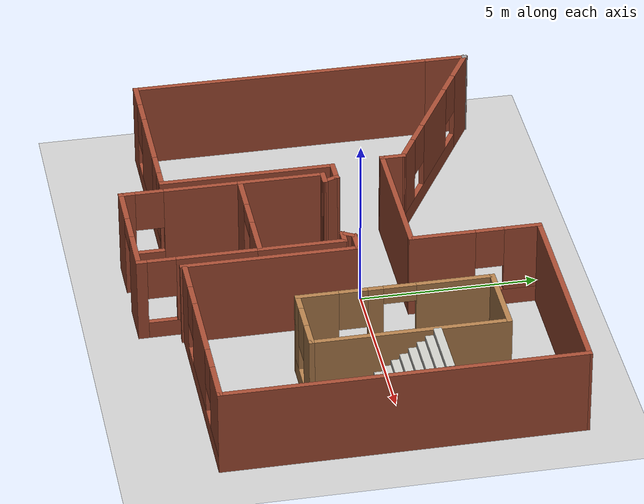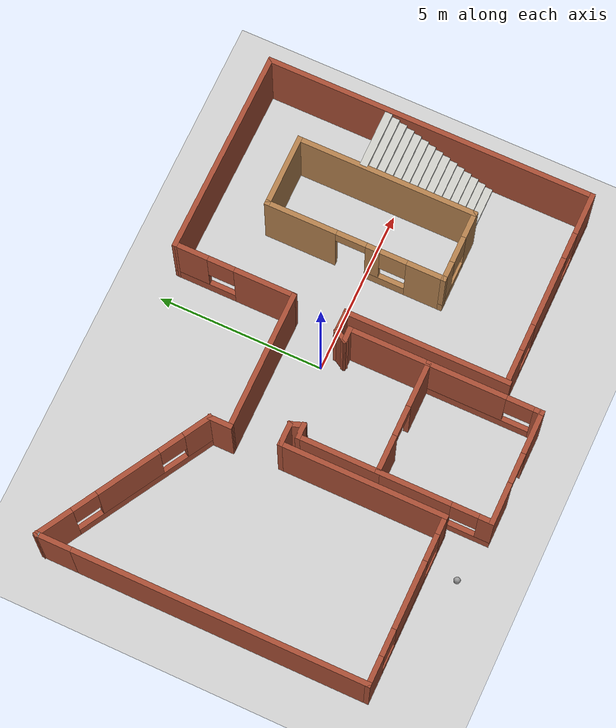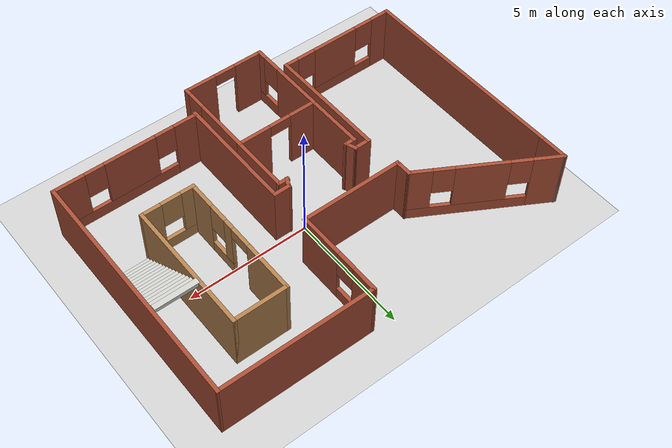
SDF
<sdf version="1.6">
 <world name="default">
  <model name="ground_plane">
   <static>1</static>
   <link name="link">
    <collision name="collision">
     <geometry><plane><normal>0 0 1</normal><size>100 100</size></plane></geometry>
     <surface><friction><ode><mu>100</mu><mu2>50</mu2></ode></friction></surface>
    </collision>
    <visual name="visual">
     <cast_shadows>0</cast_shadows>
     <geometry><plane><normal>0 0 1</normal><size>100 100</size></plane></geometry>
     <material>
      <script><uri>file://media/materials/scripts/gazebo.material</uri><name>Gazebo/Grey</name></script>
     </material>
    </visual>
   </link>
  </model>
  <model name="Bad_Design">
   <pose>-0.532956 -0.718389 0 0 -0 0</pose>
   <link name="Stairs_1">
    <visual name="Stairs_1_Visual_0">
     <pose>6.58288 -1.42378 0.083333 0 -0 -3.14159</pose>
     <geometry><box><size>1.74481 0.229787 0.166667</size></box></geometry>
     <material>
      <script><uri>file://media/materials/scripts/gazebo.material</uri><name>Gazebo/CeilingTiled</name></script>
      <ambient>1 1 1 1</ambient>
     </material>
     <meta><layer>0</layer></meta>
    </visual>
    <collision name="Stairs_1_Collision_0">
     <geometry><box><size>1.74481 0.229787 0.166667</size></box></geometry>
     <pose>6.58288 -1.42378 0.083333 0 -0 -3.14159</pose>
    </collision>
    <visual name="Stairs_1_Visual_1">
     <pose>6.58288 -1.194 0.25 0 -0 -3.14159</pose>
     <geometry><box><size>1.74481 0.229787 0.166667</size></box></geometry>
     <material>
      <script><uri>file://media/materials/scripts/gazebo.material</uri><name>Gazebo/CeilingTiled</name></script>
      <ambient>1 1 1 1</ambient>
     </material>
     <meta><layer>0</layer></meta>
    </visual>
    <collision name="Stairs_1_Collision_1">
     <geometry><box><size>1.74481 0.229787 0.166667</size></box></geometry>
     <pose>6.58288 -1.194 0.25 0 -0 -3.14159</pose>
    </collision>
    <visual name="Stairs_1_Visual_2">
     <pose>6.58288 -0.964209 0.416667 0 -0 -3.14159</pose>
     <geometry><box><size>1.74481 0.229787 0.166667</size></box></geometry>
     <material>
      <script><uri>file://media/materials/scripts/gazebo.material</uri><name>Gazebo/CeilingTiled</name></script>
      <ambient>1 1 1 1</ambient>
     </material>
     <meta><layer>0</layer></meta>
    </visual>
    <collision name="Stairs_1_Collision_2">
     <geometry><box><size>1.74481 0.229787 0.166667</size></box></geometry>
     <pose>6.58288 -0.964209 0.416667 0 -0 -3.14159</pose>
    </collision>
    <visual name="Stairs_1_Visual_3">
     <pose>6.58288 -0.734423 0.583333 0 -0 -3.14159</pose>
     <geometry><box><size>1.74481 0.229787 0.166667</size></box></geometry>
     <material>
      <script><uri>file://media/materials/scripts/gazebo.material</uri><name>Gazebo/CeilingTiled</name></script>
      <ambient>1 1 1 1</ambient>
     </material>
     <meta><layer>0</layer></meta>
    </visual>
    <collision name="Stairs_1_Collision_3">
     <geometry><box><size>1.74481 0.229787 0.166667</size></box></geometry>
     <pose>6.58288 -0.734423 0.583333 0 -0 -3.14159</pose>
    </collision>
    <visual name="Stairs_1_Visual_4">
     <pose>6.58288 -0.504636 0.75 0 -0 -3.14159</pose>
     <geometry><box><size>1.74481 0.229787 0.166667</size></box></geometry>
     <material>
      <script><uri>file://media/materials/scripts/gazebo.material</uri><name>Gazebo/CeilingTiled</name></script>
      <ambient>1 1 1 1</ambient>
     </material>
     <meta><layer>0</layer></meta>
    </visual>
    <collision name="Stairs_1_Collision_4">
     <geometry><box><size>1.74481 0.229787 0.166667</size></box></geometry>
     <pose>6.58288 -0.504636 0.75 0 -0 -3.14159</pose>
    </collision>
    <visual name="Stairs_1_Visual_5">
     <pose>6.58288 -0.274849 0.916667 0 -0 -3.14159</pose>
     <geometry><box><size>1.74481 0.229787 0.166667</size></box></geometry>
     <material>
      <script><uri>file://media/materials/scripts/gazebo.material</uri><name>Gazebo/CeilingTiled</name></script>
      <ambient>1 1 1 1</ambient>
     </material>
     <meta><layer>0</layer></meta>
    </visual>
    <collision name="Stairs_1_Collision_5">
     <geometry><box><size>1.74481 0.229787 0.166667</size></box></geometry>
     <pose>6.58288 -0.274849 0.916667 0 -0 -3.14159</pose>
    </collision>
    <visual name="Stairs_1_Visual_6">
     <pose>6.58288 -0.045063 1.08333 0 -0 -3.14159</pose>
     <geometry><box><size>1.74481 0.229787 0.166667</size></box></geometry>
     <material>
      <script><uri>file://media/materials/scripts/gazebo.material</uri><name>Gazebo/CeilingTiled</name></script>
      <ambient>1 1 1 1</ambient>
     </material>
     <meta><layer>0</layer></meta>
    </visual>
    <collision name="Stairs_1_Collision_6">
     <geometry><box><size>1.74481 0.229787 0.166667</size></box></geometry>
     <pose>6.58288 -0.045063 1.08333 0 -0 -3.14159</pose>
    </collision>
    <visual name="Stairs_1_Visual_7">
     <pose>6.58288 0.184724 1.25 0 -0 -3.14159</pose>
     <geometry><box><size>1.74481 0.229787 0.166667</size></box></geometry>
     <material>
      <script><uri>file://media/materials/scripts/gazebo.material</uri><name>Gazebo/CeilingTiled</name></script>
      <ambient>1 1 1 1</ambient>
     </material>
     <meta><layer>0</layer></meta>
    </visual>
    <collision name="Stairs_1_Collision_7">
     <geometry><box><size>1.74481 0.229787 0.166667</size></box></geometry>
     <pose>6.58288 0.184724 1.25 0 -0 -3.14159</pose>
    </collision>
    <visual name="Stairs_1_Visual_8">
     <pose>6.58288 0.414511 1.41667 0 -0 -3.14159</pose>
     <geometry><box><size>1.74481 0.229787 0.166667</size></box></geometry>
     <material>
      <script><uri>file://media/materials/scripts/gazebo.material</uri><name>Gazebo/CeilingTiled</name></script>
      <ambient>1 1 1 1</ambient>
     </material>
     <meta><layer>0</layer></meta>
    </visual>
    <collision name="Stairs_1_Collision_8">
     <geometry><box><size>1.74481 0.229787 0.166667</size></box></geometry>
     <pose>6.58288 0.414511 1.41667 0 -0 -3.14159</pose>
    </collision>
    <visual name="Stairs_1_Visual_9">
     <pose>6.58288 0.644297 1.58333 0 -0 -3.14159</pose>
     <geometry><box><size>1.74481 0.229787 0.166667</size></box></geometry>
     <material>
      <script><uri>file://media/materials/scripts/gazebo.material</uri><name>Gazebo/CeilingTiled</name></script>
      <ambient>1 1 1 1</ambient>
     </material>
     <meta><layer>0</layer></meta>
    </visual>
    <collision name="Stairs_1_Collision_9">
     <geometry><box><size>1.74481 0.229787 0.166667</size></box></geometry>
     <pose>6.58288 0.644297 1.58333 0 -0 -3.14159</pose>
    </collision>
    <visual name="Stairs_1_Visual_10">
     <pose>6.58288 0.874084 1.75 0 -0 -3.14159</pose>
     <geometry><box><size>1.74481 0.229787 0.166667</size></box></geometry>
     <material>
      <script><uri>file://media/materials/scripts/gazebo.material</uri><name>Gazebo/CeilingTiled</name></script>
      <ambient>1 1 1 1</ambient>
     </material>
     <meta><layer>0</layer></meta>
    </visual>
    <collision name="Stairs_1_Collision_10">
     <geometry><box><size>1.74481 0.229787 0.166667</size></box></geometry>
     <pose>6.58288 0.874084 1.75 0 -0 -3.14159</pose>
    </collision>
    <visual name="Stairs_1_Visual_11">
     <pose>6.58288 1.10387 1.91667 0 -0 -3.14159</pose>
     <geometry><box><size>1.74481 0.229787 0.166667</size></box></geometry>
     <material>
      <script><uri>file://media/materials/scripts/gazebo.material</uri><name>Gazebo/CeilingTiled</name></script>
      <ambient>1 1 1 1</ambient>
     </material>
     <meta><layer>0</layer></meta>
    </visual>
    <collision name="Stairs_1_Collision_11">
     <geometry><box><size>1.74481 0.229787 0.166667</size></box></geometry>
     <pose>6.58288 1.10387 1.91667 0 -0 -3.14159</pose>
    </collision>
    <visual name="Stairs_1_Visual_12">
     <pose>6.58288 1.33366 2.08333 0 -0 -3.14159</pose>
     <geometry><box><size>1.74481 0.229787 0.166667</size></box></geometry>
     <material>
      <script><uri>file://media/materials/scripts/gazebo.material</uri><name>Gazebo/CeilingTiled</name></script>
      <ambient>1 1 1 1</ambient>
     </material>
     <meta><layer>0</layer></meta>
    </visual>
    <collision name="Stairs_1_Collision_12">
     <geometry><box><size>1.74481 0.229787 0.166667</size></box></geometry>
     <pose>6.58288 1.33366 2.08333 0 -0 -3.14159</pose>
    </collision>
    <visual name="Stairs_1_Visual_13">
     <pose>6.58288 1.56344 2.25 0 -0 -3.14159</pose>
     <geometry><box><size>1.74481 0.229787 0.166667</size></box></geometry>
     <material>
      <script><uri>file://media/materials/scripts/gazebo.material</uri><name>Gazebo/CeilingTiled</name></script>
      <ambient>1 1 1 1</ambient>
     </material>
     <meta><layer>0</layer></meta>
    </visual>
    <collision name="Stairs_1_Collision_13">
     <geometry><box><size>1.74481 0.229787 0.166667</size></box></geometry>
     <pose>6.58288 1.56344 2.25 0 -0 -3.14159</pose>
    </collision>
    <visual name="Stairs_1_Visual_14">
     <pose>6.58288 1.79323 2.41667 0 -0 -3.14159</pose>
     <geometry><box><size>1.74481 0.229787 0.166667</size></box></geometry>
     <material>
      <script><uri>file://media/materials/scripts/gazebo.material</uri><name>Gazebo/CeilingTiled</name></script>
      <ambient>1 1 1 1</ambient>
     </material>
     <meta><layer>0</layer></meta>
    </visual>
    <collision name="Stairs_1_Collision_14">
     <geometry><box><size>1.74481 0.229787 0.166667</size></box></geometry>
     <pose>6.58288 1.79323 2.41667 0 -0 -3.14159</pose>
    </collision>
   </link>
   <link name="Wall_10">
    <collision name="Wall_10_Collision">
     <geometry><box><size>2.5 0.15 2.5</size></box></geometry>
     <pose>0 0 1.25 0 -0 0</pose>
    </collision>
    <visual name="Wall_10_Visual">
     <pose>0 0 1.25 0 -0 0</pose>
     <geometry><box><size>2.5 0.15 2.5</size></box></geometry>
     <material>
      <script><uri>file://media/materials/scripts/gazebo.material</uri><name>Gazebo/Bricks</name></script>
      <ambient>1 1 1 1</ambient>
     </material>
     <meta><layer>0</layer></meta>
    </visual>
    <pose>-2.15842 -1.02464 0 0 0 -1.5708</pose>
   </link>
   <link name="Wall_11">
    <pose>-0.483422 -2.19964 0 0 -0 0</pose>
    <visual name="Wall_11_Visual_0">
     <pose>-1.15657 0 1.25 0 -0 0</pose>
     <geometry><box><size>1.18686 0.15 2.5</size></box></geometry>
     <material>
      <script><uri>file://media/materials/scripts/gazebo.material</uri><name>Gazebo/Bricks</name></script>
      <ambient>1 1 1 1</ambient>
     </material>
     <meta><layer>0</layer></meta>
    </visual>
    <collision name="Wall_11_Collision_0">
     <geometry><box><size>1.18686 0.15 2.5</size></box></geometry>
     <pose>-1.15657 0 1.25 0 -0 0</pose>
    </collision>
    <visual name="Wall_11_Visual_1">
     <pose>1.04343 0 1.25 0 -0 0</pose>
     <geometry><box><size>1.41314 0.15 2.5</size></box></geometry>
     <material>
      <script><uri>file://media/materials/scripts/gazebo.material</uri><name>Gazebo/Bricks</name></script>
      <ambient>1 1 1 1</ambient>
     </material>
     <meta><layer>0</layer></meta>
    </visual>
    <collision name="Wall_11_Collision_1">
     <geometry><box><size>1.41314 0.15 2.5</size></box></geometry>
     <pose>1.04343 0 1.25 0 -0 0</pose>
    </collision>
    <visual name="Wall_11_Visual_2">
     <pose>-0.113144 0 2.25 0 -0 0</pose>
     <geometry><box><size>0.9 0.15 0.5</size></box></geometry>
     <material>
      <script><uri>file://media/materials/scripts/gazebo.material</uri><name>Gazebo/Bricks</name></script>
      <ambient>1 1 1 1</ambient>
     </material>
     <meta><layer>0</layer></meta>
    </visual>
    <collision name="Wall_11_Collision_2">
     <geometry><box><size>0.9 0.15 0.5</size></box></geometry>
     <pose>-0.113144 0 2.25 0 -0 0</pose>
    </collision>
   </link>
   <link name="Wall_12">
    <collision name="Wall_12_Collision">
     <geometry><box><size>2.5 0.15 2.5</size></box></geometry>
     <pose>0 0 1.25 0 -0 0</pose>
    </collision>
    <visual name="Wall_12_Visual">
     <pose>0 0 1.25 0 -0 0</pose>
     <geometry><box><size>2.5 0.15 2.5</size></box></geometry>
     <material>
      <script><uri>file://media/materials/scripts/gazebo.material</uri><name>Gazebo/Bricks</name></script>
      <ambient>1 1 1 1</ambient>
     </material>
     <meta><layer>0</layer></meta>
    </visual>
    <pose>1.19158 -1.02464 0 0 -0 1.5708</pose>
   </link>
   <link name="Wall_13">
    <collision name="Wall_13_Collision">
     <geometry><box><size>0.5 0.15 2.5</size></box></geometry>
     <pose>0 0 1.25 0 -0 0</pose>
    </collision>
    <visual name="Wall_13_Visual">
     <pose>0 0 1.25 0 -0 0</pose>
     <geometry><box><size>0.5 0.15 2.5</size></box></geometry>
     <material>
      <script><uri>file://media/materials/scripts/gazebo.material</uri><name>Gazebo/Bricks</name></script>
      <ambient>1 1 1 1</ambient>
     </material>
     <meta><layer>0</layer></meta>
    </visual>
    <pose>1.01658 0.150362 0 0 -0 3.14159</pose>
   </link>
   <link name="Wall_16">
    <collision name="Wall_16_Collision">
     <geometry><box><size>0.492606 0.15 2.5</size></box></geometry>
     <pose>0 0 1.25 0 -0 0</pose>
    </collision>
    <visual name="Wall_16_Visual">
     <pose>0 0 1.25 0 -0 0</pose>
     <geometry><box><size>0.492606 0.15 2.5</size></box></geometry>
     <material>
      <script><uri>file://media/materials/scripts/gazebo.material</uri><name>Gazebo/Bricks</name></script>
      <ambient>1 1 1 1</ambient>
     </material>
     <meta><layer>0</layer></meta>
    </visual>
    <pose>0.927449 0.298587 0 0 -0 1.04572</pose>
   </link>
   <link name="Wall_17">
    <collision name="Wall_17_Collision">
     <geometry><box><size>0.75 0.15 2.5</size></box></geometry>
     <pose>0 0 1.25 0 -0 0</pose>
    </collision>
    <visual name="Wall_17_Visual">
     <pose>0 0 1.25 0 -0 0</pose>
     <geometry><box><size>0.75 0.15 2.5</size></box></geometry>
     <material>
      <script><uri>file://media/materials/scripts/gazebo.material</uri><name>Gazebo/Bricks</name></script>
      <ambient>1 1 1 1</ambient>
     </material>
     <meta><layer>0</layer></meta>
    </visual>
    <pose>1.29811 0.446813 0 0 -0 0</pose>
   </link>
   <link name="Wall_19">
    <pose>4.61658 -4.34964 0 0 -0 0</pose>
    <visual name="Wall_19_Visual_0">
     <pose>-2.51106 0 1.25 0 -0 0</pose>
     <geometry><box><size>0.977883 0.15 2.5</size></box></geometry>
     <material>
      <script><uri>file://media/materials/scripts/gazebo.material</uri><name>Gazebo/Bricks</name></script>
      <ambient>1 1 1 1</ambient>
     </material>
     <meta><layer>0</layer></meta>
    </visual>
    <collision name="Wall_19_Collision_0">
     <geometry><box><size>0.977883 0.15 2.5</size></box></geometry>
     <pose>-2.51106 0 1.25 0 -0 0</pose>
    </collision>
    <visual name="Wall_19_Visual_1">
     <pose>0.488942 0 0.25 0 -0 0</pose>
     <geometry><box><size>5.02212 0.15 0.5</size></box></geometry>
     <material>
      <script><uri>file://media/materials/scripts/gazebo.material</uri><name>Gazebo/Bricks</name></script>
      <ambient>1 1 1 1</ambient>
     </material>
     <meta><layer>0</layer></meta>
    </visual>
    <collision name="Wall_19_Collision_1">
     <geometry><box><size>5.02212 0.15 0.5</size></box></geometry>
     <pose>0.488942 0 0.25 0 -0 0</pose>
    </collision>
    <visual name="Wall_19_Visual_2">
     <pose>-0.159106 0 1.5 0 -0 0</pose>
     <geometry><box><size>2.12602 0.15 2</size></box></geometry>
     <material>
      <script><uri>file://media/materials/scripts/gazebo.material</uri><name>Gazebo/Bricks</name></script>
      <ambient>1 1 1 1</ambient>
     </material>
     <meta><layer>0</layer></meta>
    </visual>
    <collision name="Wall_19_Collision_2">
     <geometry><box><size>2.12602 0.15 2</size></box></geometry>
     <pose>-0.159106 0 1.5 0 -0 0</pose>
    </collision>
    <visual name="Wall_19_Visual_3">
     <pose>2.35195 0 1.5 0 -0 0</pose>
     <geometry><box><size>1.29609 0.15 2</size></box></geometry>
     <material>
      <script><uri>file://media/materials/scripts/gazebo.material</uri><name>Gazebo/Bricks</name></script>
      <ambient>1 1 1 1</ambient>
     </material>
     <meta><layer>0</layer></meta>
    </visual>
    <collision name="Wall_19_Collision_3">
     <geometry><box><size>1.29609 0.15 2</size></box></geometry>
     <pose>2.35195 0 1.5 0 -0 0</pose>
    </collision>
    <visual name="Wall_19_Visual_4">
     <pose>-1.62212 0 1.9 0 -0 0</pose>
     <geometry><box><size>0.8 0.15 1.2</size></box></geometry>
     <material>
      <script><uri>file://media/materials/scripts/gazebo.material</uri><name>Gazebo/Bricks</name></script>
      <ambient>1 1 1 1</ambient>
     </material>
     <meta><layer>0</layer></meta>
    </visual>
    <collision name="Wall_19_Collision_4">
     <geometry><box><size>0.8 0.15 1.2</size></box></geometry>
     <pose>-1.62212 0 1.9 0 -0 0</pose>
    </collision>
    <visual name="Wall_19_Visual_5">
     <pose>1.30391 0 1.9 0 -0 0</pose>
     <geometry><box><size>0.8 0.15 1.2</size></box></geometry>
     <material>
      <script><uri>file://media/materials/scripts/gazebo.material</uri><name>Gazebo/Bricks</name></script>
      <ambient>1 1 1 1</ambient>
     </material>
     <meta><layer>0</layer></meta>
    </visual>
    <collision name="Wall_19_Collision_5">
     <geometry><box><size>0.8 0.15 1.2</size></box></geometry>
     <pose>1.30391 0 1.9 0 -0 0</pose>
    </collision>
   </link>
   <link name="Wall_20">
    <collision name="Wall_20_Collision">
     <geometry><box><size>10 0.15 2.5</size></box></geometry>
     <pose>0 0 1.25 0 -0 0</pose>
    </collision>
    <visual name="Wall_20_Visual">
     <pose>0 0 1.25 0 -0 0</pose>
     <geometry><box><size>10 0.15 2.5</size></box></geometry>
     <material>
      <script><uri>file://media/materials/scripts/gazebo.material</uri><name>Gazebo/Bricks</name></script>
      <ambient>1 1 1 1</ambient>
     </material>
     <meta><layer>0</layer></meta>
    </visual>
    <pose>7.54158 0.575362 0 0 -0 1.5708</pose>
   </link>
   <link name="Wall_27">
    <collision name="Wall_27_Collision">
     <geometry><box><size>0.522524 0.15 2.5</size></box></geometry>
     <pose>0 0 1.25 0 -0 0</pose>
    </collision>
    <visual name="Wall_27_Visual">
     <pose>0 0 1.25 0 -0 0</pose>
     <geometry><box><size>0.522524 0.15 2.5</size></box></geometry>
     <material>
      <script><uri>file://media/materials/scripts/gazebo.material</uri><name>Gazebo/Bricks</name></script>
      <ambient>1 1 1 1</ambient>
     </material>
     <meta><layer>0</layer></meta>
    </visual>
    <pose>-1.87221 0.325362 0 0 0 -1.22128</pose>
   </link>
   <link name="Wall_30">
    <collision name="Wall_30_Collision">
     <geometry><box><size>5 0.15 2.5</size></box></geometry>
     <pose>0 0 1.25 0 -0 0</pose>
    </collision>
    <visual name="Wall_30_Visual">
     <pose>0 0 1.25 0 -0 0</pose>
     <geometry><box><size>5 0.15 2.5</size></box></geometry>
     <material>
      <script><uri>file://media/materials/scripts/gazebo.material</uri><name>Gazebo/Bricks</name></script>
      <ambient>1 1 1 1</ambient>
     </material>
     <meta><layer>0</layer></meta>
    </visual>
    <pose>-2.53599 -1.92464 0 0 0 -1.5708</pose>
   </link>
   <link name="Wall_35">
    <collision name="Wall_35_Collision">
     <geometry><box><size>5 0.15 2.5</size></box></geometry>
     <pose>0 0 1.25 0 -0 0</pose>
    </collision>
    <visual name="Wall_35_Visual">
     <pose>0 0 1.25 0 -0 0</pose>
     <geometry><box><size>5 0.15 2.5</size></box></geometry>
     <material>
      <script><uri>file://media/materials/scripts/gazebo.material</uri><name>Gazebo/Bricks</name></script>
      <ambient>1 1 1 1</ambient>
     </material>
     <meta><layer>0</layer></meta>
    </visual>
    <pose>1.59811 -1.97819 0 0 0 -1.5708</pose>
   </link>
   <link name="Wall_37">
    <collision name="Wall_37_Collision">
     <geometry><box><size>8.75 0.15 2.5</size></box></geometry>
     <pose>0 0 1.25 0 -0 0</pose>
    </collision>
    <visual name="Wall_37_Visual">
     <pose>0 0 1.25 0 -0 0</pose>
     <geometry><box><size>8.75 0.15 2.5</size></box></geometry>
     <material>
      <script><uri>file://media/materials/scripts/gazebo.material</uri><name>Gazebo/Bricks</name></script>
      <ambient>1 1 1 1</ambient>
     </material>
     <meta><layer>0</layer></meta>
    </visual>
    <pose>-7.51472 -0.050957 0 0 -0 1.5708</pose>
   </link>
   <link name="Wall_40">
    <collision name="Wall_40_Collision">
     <geometry><box><size>0.15 0.15 2.5</size></box></geometry>
     <pose>0 0 1.25 0 -0 0</pose>
    </collision>
    <visual name="Wall_40_Visual">
     <pose>0 0 1.25 0 -0 0</pose>
     <geometry><box><size>0.15 0.15 2.5</size></box></geometry>
     <material>
      <script><uri>file://media/materials/scripts/gazebo.material</uri><name>Gazebo/Grey</name></script>
      <ambient>1 1 1 1</ambient>
     </material>
     <meta><layer>0</layer></meta>
    </visual>
    <pose>-7.51472 5.34904 0 0 -0 0</pose>
   </link>
   <link name="Wall_44">
    <collision name="Wall_44_Collision">
     <geometry><box><size>1.25 0.15 2.5</size></box></geometry>
     <pose>0 0 1.25 0 -0 0</pose>
    </collision>
    <visual name="Wall_44_Visual">
     <pose>0 0 1.25 0 -0 0</pose>
     <geometry><box><size>1.25 0.15 2.5</size></box></geometry>
     <material>
      <script><uri>file://media/materials/scripts/gazebo.material</uri><name>Gazebo/Bricks</name></script>
      <ambient>1 1 1 1</ambient>
     </material>
     <meta><layer>0</layer></meta>
    </visual>
    <pose>-7.51472 4.79904 0 0 -0 1.5708</pose>
   </link>
   <link name="Wall_45">
    <pose>-5.08985 3.94904 0 0 0 -0.523599</pose>
    <visual name="Wall_45_Visual_0">
     <pose>-2.27507 0 1.25 0 -0 0</pose>
     <geometry><box><size>1.19987 0.15 2.5</size></box></geometry>
     <material>
      <script><uri>file://media/materials/scripts/gazebo.material</uri><name>Gazebo/Bricks</name></script>
      <ambient>1 1 1 1</ambient>
     </material>
     <meta><layer>0</layer></meta>
    </visual>
    <collision name="Wall_45_Collision_0">
     <geometry><box><size>1.19987 0.15 2.5</size></box></geometry>
     <pose>-2.27507 0 1.25 0 -0 0</pose>
    </collision>
    <visual name="Wall_45_Visual_1">
     <pose>0.599933 0 0.25 0 -0 0</pose>
     <geometry><box><size>4.55013 0.15 0.5</size></box></geometry>
     <material>
      <script><uri>file://media/materials/scripts/gazebo.material</uri><name>Gazebo/Bricks</name></script>
      <ambient>1 1 1 1</ambient>
     </material>
     <meta><layer>0</layer></meta>
    </visual>
    <collision name="Wall_45_Collision_1">
     <geometry><box><size>4.55013 0.15 0.5</size></box></geometry>
     <pose>0.599933 0 0.25 0 -0 0</pose>
    </collision>
    <visual name="Wall_45_Visual_2">
     <pose>0.130346 0 1.5 0 -0 0</pose>
     <geometry><box><size>2.01096 0.15 2</size></box></geometry>
     <material>
      <script><uri>file://media/materials/scripts/gazebo.material</uri><name>Gazebo/Bricks</name></script>
      <ambient>1 1 1 1</ambient>
     </material>
     <meta><layer>0</layer></meta>
    </visual>
    <collision name="Wall_45_Collision_2">
     <geometry><box><size>2.01096 0.15 2</size></box></geometry>
     <pose>0.130346 0 1.5 0 -0 0</pose>
    </collision>
    <visual name="Wall_45_Visual_3">
     <pose>2.40541 0 1.5 0 -0 0</pose>
     <geometry><box><size>0.939175 0.15 2</size></box></geometry>
     <material>
      <script><uri>file://media/materials/scripts/gazebo.material</uri><name>Gazebo/Bricks</name></script>
      <ambient>1 1 1 1</ambient>
     </material>
     <meta><layer>0</layer></meta>
    </visual>
    <collision name="Wall_45_Collision_3">
     <geometry><box><size>0.939175 0.15 2</size></box></geometry>
     <pose>2.40541 0 1.5 0 -0 0</pose>
    </collision>
    <visual name="Wall_45_Visual_4">
     <pose>-1.27513 0 1.9 0 -0 0</pose>
     <geometry><box><size>0.8 0.15 1.2</size></box></geometry>
     <material>
      <script><uri>file://media/materials/scripts/gazebo.material</uri><name>Gazebo/Bricks</name></script>
      <ambient>1 1 1 1</ambient>
     </material>
     <meta><layer>0</layer></meta>
    </visual>
    <collision name="Wall_45_Collision_4">
     <geometry><box><size>0.8 0.15 1.2</size></box></geometry>
     <pose>-1.27513 0 1.9 0 -0 0</pose>
    </collision>
    <visual name="Wall_45_Visual_5">
     <pose>1.53582 0 1.9 0 -0 0</pose>
     <geometry><box><size>0.8 0.15 1.2</size></box></geometry>
     <material>
      <script><uri>file://media/materials/scripts/gazebo.material</uri><name>Gazebo/Bricks</name></script>
      <ambient>1 1 1 1</ambient>
     </material>
     <meta><layer>0</layer></meta>
    </visual>
    <collision name="Wall_45_Collision_5">
     <geometry><box><size>0.8 0.15 1.2</size></box></geometry>
     <pose>1.53582 0 1.9 0 -0 0</pose>
    </collision>
   </link>
   <link name="Wall_46">
    <collision name="Wall_46_Collision">
     <geometry><box><size>0.75 0.15 2.5</size></box></geometry>
     <pose>0 0 1.25 0 -0 0</pose>
    </collision>
    <visual name="Wall_46_Visual">
     <pose>0 0 1.25 0 -0 0</pose>
     <geometry><box><size>0.75 0.15 2.5</size></box></geometry>
     <material>
      <script><uri>file://media/materials/scripts/gazebo.material</uri><name>Gazebo/Bricks</name></script>
      <ambient>1 1 1 1</ambient>
     </material>
     <meta><layer>0</layer></meta>
    </visual>
    <pose>-2.66498 2.24904 0 0 0 -1.5708</pose>
   </link>
   <link name="Wall_47">
    <collision name="Wall_47_Collision">
     <geometry><box><size>4.25 0.15 2.5</size></box></geometry>
     <pose>0 0 1.25 0 -0 0</pose>
    </collision>
    <visual name="Wall_47_Visual">
     <pose>0 0 1.25 0 -0 0</pose>
     <geometry><box><size>4.25 0.15 2.5</size></box></geometry>
     <material>
      <script><uri>file://media/materials/scripts/gazebo.material</uri><name>Gazebo/Bricks</name></script>
      <ambient>1 1 1 1</ambient>
     </material>
     <meta><layer>0</layer></meta>
    </visual>
    <pose>-0.61498 1.94904 0 0 -0 0</pose>
   </link>
   <link name="Wall_48">
    <pose>1.43502 3.74904 0 0 -0 1.5708</pose>
    <visual name="Wall_48_Visual_0">
     <pose>-0.937432 0 1.25 0 -0 0</pose>
     <geometry><box><size>1.87514 0.15 2.5</size></box></geometry>
     <material>
      <script><uri>file://media/materials/scripts/gazebo.material</uri><name>Gazebo/Bricks</name></script>
      <ambient>1 1 1 1</ambient>
     </material>
     <meta><layer>0</layer></meta>
    </visual>
    <collision name="Wall_48_Collision_0">
     <geometry><box><size>1.87514 0.15 2.5</size></box></geometry>
     <pose>-0.937432 0 1.25 0 -0 0</pose>
    </collision>
    <visual name="Wall_48_Visual_1">
     <pose>0.937568 0 0.25 0 -0 0</pose>
     <geometry><box><size>1.87486 0.15 0.5</size></box></geometry>
     <material>
      <script><uri>file://media/materials/scripts/gazebo.material</uri><name>Gazebo/Bricks</name></script>
      <ambient>1 1 1 1</ambient>
     </material>
     <meta><layer>0</layer></meta>
    </visual>
    <collision name="Wall_48_Collision_1">
     <geometry><box><size>1.87486 0.15 0.5</size></box></geometry>
     <pose>0.937568 0 0.25 0 -0 0</pose>
    </collision>
    <visual name="Wall_48_Visual_2">
     <pose>1.33757 0 1.5 0 -0 0</pose>
     <geometry><box><size>1.07486 0.15 2</size></box></geometry>
     <material>
      <script><uri>file://media/materials/scripts/gazebo.material</uri><name>Gazebo/Bricks</name></script>
      <ambient>1 1 1 1</ambient>
     </material>
     <meta><layer>0</layer></meta>
    </visual>
    <collision name="Wall_48_Collision_2">
     <geometry><box><size>1.07486 0.15 2</size></box></geometry>
     <pose>1.33757 0 1.5 0 -0 0</pose>
    </collision>
    <visual name="Wall_48_Visual_3">
     <pose>0.400137 0 1.9 0 -0 0</pose>
     <geometry><box><size>0.8 0.15 1.2</size></box></geometry>
     <material>
      <script><uri>file://media/materials/scripts/gazebo.material</uri><name>Gazebo/Bricks</name></script>
      <ambient>1 1 1 1</ambient>
     </material>
     <meta><layer>0</layer></meta>
    </visual>
    <collision name="Wall_48_Collision_3">
     <geometry><box><size>0.8 0.15 1.2</size></box></geometry>
     <pose>0.400137 0 1.9 0 -0 0</pose>
    </collision>
   </link>
   <link name="Wall_49">
    <collision name="Wall_49_Collision">
     <geometry><box><size>6.25675 0.15 2.5</size></box></geometry>
     <pose>0 0 1.25 0 -0 0</pose>
    </collision>
    <visual name="Wall_49_Visual">
     <pose>0 0 1.25 0 -0 0</pose>
     <geometry><box><size>6.25675 0.15 2.5</size></box></geometry>
     <material>
      <script><uri>file://media/materials/scripts/gazebo.material</uri><name>Gazebo/Bricks</name></script>
      <ambient>1 1 1 1</ambient>
     </material>
     <meta><layer>0</layer></meta>
    </visual>
    <pose>4.4883 5.5247 0 0 0 -0.007972</pose>
   </link>
   <link name="Wall_5">
    <pose>-5.08972 -4.35096 0 0 -0 0</pose>
    <visual name="Wall_5_Visual_0">
     <pose>-2.04964 0 1.25 0 -0 0</pose>
     <geometry><box><size>0.900714 0.15 2.5</size></box></geometry>
     <material>
      <script><uri>file://media/materials/scripts/gazebo.material</uri><name>Gazebo/Bricks</name></script>
      <ambient>1 1 1 1</ambient>
     </material>
     <meta><layer>0</layer></meta>
    </visual>
    <collision name="Wall_5_Collision_0">
     <geometry><box><size>0.900714 0.15 2.5</size></box></geometry>
     <pose>-2.04964 0 1.25 0 -0 0</pose>
    </collision>
    <visual name="Wall_5_Visual_1">
     <pose>0.450357 0 0.25 0 -0 0</pose>
     <geometry><box><size>4.09929 0.15 0.5</size></box></geometry>
     <material>
      <script><uri>file://media/materials/scripts/gazebo.material</uri><name>Gazebo/Bricks</name></script>
      <ambient>1 1 1 1</ambient>
     </material>
     <meta><layer>0</layer></meta>
    </visual>
    <collision name="Wall_5_Collision_1">
     <geometry><box><size>4.09929 0.15 0.5</size></box></geometry>
     <pose>0.450357 0 0.25 0 -0 0</pose>
    </collision>
    <visual name="Wall_5_Visual_2">
     <pose>0.210525 0 1.5 0 -0 0</pose>
     <geometry><box><size>2.01962 0.15 2</size></box></geometry>
     <material>
      <script><uri>file://media/materials/scripts/gazebo.material</uri><name>Gazebo/Bricks</name></script>
      <ambient>1 1 1 1</ambient>
     </material>
     <meta><layer>0</layer></meta>
    </visual>
    <collision name="Wall_5_Collision_2">
     <geometry><box><size>2.01962 0.15 2</size></box></geometry>
     <pose>0.210525 0 1.5 0 -0 0</pose>
    </collision>
    <visual name="Wall_5_Visual_3">
     <pose>2.26017 0 1.5 0 -0 0</pose>
     <geometry><box><size>0.479664 0.15 2</size></box></geometry>
     <material>
      <script><uri>file://media/materials/scripts/gazebo.material</uri><name>Gazebo/Bricks</name></script>
      <ambient>1 1 1 1</ambient>
     </material>
     <meta><layer>0</layer></meta>
    </visual>
    <collision name="Wall_5_Collision_3">
     <geometry><box><size>0.479664 0.15 2</size></box></geometry>
     <pose>2.26017 0 1.5 0 -0 0</pose>
    </collision>
    <visual name="Wall_5_Visual_4">
     <pose>-1.19929 0 1.9 0 -0 0</pose>
     <geometry><box><size>0.8 0.15 1.2</size></box></geometry>
     <material>
      <script><uri>file://media/materials/scripts/gazebo.material</uri><name>Gazebo/Bricks</name></script>
      <ambient>1 1 1 1</ambient>
     </material>
     <meta><layer>0</layer></meta>
    </visual>
    <collision name="Wall_5_Collision_4">
     <geometry><box><size>0.8 0.15 1.2</size></box></geometry>
     <pose>-1.19929 0 1.9 0 -0 0</pose>
    </collision>
    <visual name="Wall_5_Visual_5">
     <pose>1.62034 0 1.9 0 -0 0</pose>
     <geometry><box><size>0.8 0.15 1.2</size></box></geometry>
     <material>
      <script><uri>file://media/materials/scripts/gazebo.material</uri><name>Gazebo/Bricks</name></script>
      <ambient>1 1 1 1</ambient>
     </material>
     <meta><layer>0</layer></meta>
    </visual>
    <collision name="Wall_5_Collision_5">
     <geometry><box><size>0.8 0.15 1.2</size></box></geometry>
     <pose>1.62034 0 1.9 0 -0 0</pose>
    </collision>
   </link>
   <link name="Wall_52">
    <collision name="Wall_52_Collision">
     <geometry><box><size>2.25 0.15 2.5</size></box></geometry>
     <pose>0 0 1.25 0 -0 0</pose>
    </collision>
    <visual name="Wall_52_Visual">
     <pose>0 0 1.25 0 -0 0</pose>
     <geometry><box><size>2.25 0.15 2.5</size></box></geometry>
     <material>
      <script><uri>file://media/materials/scripts/gazebo.material</uri><name>Gazebo/Wood</name></script>
      <ambient>1 1 1 1</ambient>
     </material>
     <meta><layer>0</layer></meta>
    </visual>
    <pose>4.64982 3.75221 0 0 -0 0</pose>
   </link>
   <link name="Wall_53">
    <collision name="Wall_53_Collision">
     <geometry><box><size>5.5 0.15 2.5</size></box></geometry>
     <pose>0 0 1.25 0 -0 0</pose>
    </collision>
    <visual name="Wall_53_Visual">
     <pose>0 0 1.25 0 -0 0</pose>
     <geometry><box><size>5.5 0.15 2.5</size></box></geometry>
     <material>
      <script><uri>file://media/materials/scripts/gazebo.material</uri><name>Gazebo/Wood</name></script>
      <ambient>1 1 1 1</ambient>
     </material>
     <meta><layer>0</layer></meta>
    </visual>
    <pose>5.69982 1.07721 0 0 0 -1.5708</pose>
   </link>
   <link name="Wall_54">
    <pose>4.64982 -1.59779 0 0 -0 3.14159</pose>
    <visual name="Wall_54_Visual_0">
     <pose>-0.706225 0 1.25 0 -0 0</pose>
     <geometry><box><size>0.837549 0.15 2.5</size></box></geometry>
     <material>
      <script><uri>file://media/materials/scripts/gazebo.material</uri><name>Gazebo/Wood</name></script>
      <ambient>1 1 1 1</ambient>
     </material>
     <meta><layer>0</layer></meta>
    </visual>
    <collision name="Wall_54_Collision_0">
     <geometry><box><size>0.837549 0.15 2.5</size></box></geometry>
     <pose>-0.706225 0 1.25 0 -0 0</pose>
    </collision>
    <visual name="Wall_54_Visual_1">
     <pose>0.418775 0 0.25 0 -0 0</pose>
     <geometry><box><size>1.41245 0.15 0.5</size></box></geometry>
     <material>
      <script><uri>file://media/materials/scripts/gazebo.material</uri><name>Gazebo/Wood</name></script>
      <ambient>1 1 1 1</ambient>
     </material>
     <meta><layer>0</layer></meta>
    </visual>
    <collision name="Wall_54_Collision_1">
     <geometry><box><size>1.41245 0.15 0.5</size></box></geometry>
     <pose>0.418775 0 0.25 0 -0 0</pose>
    </collision>
    <visual name="Wall_54_Visual_2">
     <pose>0.818775 0 1.5 0 -0 0</pose>
     <geometry><box><size>0.612451 0.15 2</size></box></geometry>
     <material>
      <script><uri>file://media/materials/scripts/gazebo.material</uri><name>Gazebo/Wood</name></script>
      <ambient>1 1 1 1</ambient>
     </material>
     <meta><layer>0</layer></meta>
    </visual>
    <collision name="Wall_54_Collision_2">
     <geometry><box><size>0.612451 0.15 2</size></box></geometry>
     <pose>0.818775 0 1.5 0 -0 0</pose>
    </collision>
    <visual name="Wall_54_Visual_3">
     <pose>0.112549 0 1.9 0 -0 0</pose>
     <geometry><box><size>0.8 0.15 1.2</size></box></geometry>
     <material>
      <script><uri>file://media/materials/scripts/gazebo.material</uri><name>Gazebo/Wood</name></script>
      <ambient>1 1 1 1</ambient>
     </material>
     <meta><layer>0</layer></meta>
    </visual>
    <collision name="Wall_54_Collision_3">
     <geometry><box><size>0.8 0.15 1.2</size></box></geometry>
     <pose>0.112549 0 1.9 0 -0 0</pose>
    </collision>
   </link>
   <link name="Wall_55">
    <pose>3.59982 1.07721 0 0 -0 1.5708</pose>
    <visual name="Wall_55_Visual_0">
     <pose>-2.15373 0 1.25 0 -0 0</pose>
     <geometry><box><size>1.19254 0.15 2.5</size></box></geometry>
     <material>
      <script><uri>file://media/materials/scripts/gazebo.material</uri><name>Gazebo/Wood</name></script>
      <ambient>1 1 1 1</ambient>
     </material>
     <meta><layer>0</layer></meta>
    </visual>
    <collision name="Wall_55_Collision_0">
     <geometry><box><size>1.19254 0.15 2.5</size></box></geometry>
     <pose>-2.15373 0 1.25 0 -0 0</pose>
    </collision>
    <visual name="Wall_55_Visual_1">
     <pose>1.65968 0 1.25 0 -0 0</pose>
     <geometry><box><size>2.18065 0.15 2.5</size></box></geometry>
     <material>
      <script><uri>file://media/materials/scripts/gazebo.material</uri><name>Gazebo/Wood</name></script>
      <ambient>1 1 1 1</ambient>
     </material>
     <meta><layer>0</layer></meta>
    </visual>
    <collision name="Wall_55_Collision_1">
     <geometry><box><size>2.18065 0.15 2.5</size></box></geometry>
     <pose>1.65968 0 1.25 0 -0 0</pose>
    </collision>
    <visual name="Wall_55_Visual_2">
     <pose>-0.944053 0 0.25 0 -0 0</pose>
     <geometry><box><size>1.22681 0.15 0.5</size></box></geometry>
     <material>
      <script><uri>file://media/materials/scripts/gazebo.material</uri><name>Gazebo/Wood</name></script>
      <ambient>1 1 1 1</ambient>
     </material>
     <meta><layer>0</layer></meta>
    </visual>
    <collision name="Wall_55_Collision_2">
     <geometry><box><size>1.22681 0.15 0.5</size></box></geometry>
     <pose>-0.944053 0 0.25 0 -0 0</pose>
    </collision>
    <visual name="Wall_55_Visual_3">
     <pose>-0.544053 0 1.5 0 -0 0</pose>
     <geometry><box><size>0.42681 0.15 2</size></box></geometry>
     <material>
      <script><uri>file://media/materials/scripts/gazebo.material</uri><name>Gazebo/Wood</name></script>
      <ambient>1 1 1 1</ambient>
     </material>
     <meta><layer>0</layer></meta>
    </visual>
    <collision name="Wall_55_Collision_3">
     <geometry><box><size>0.42681 0.15 2</size></box></geometry>
     <pose>-0.544053 0 1.5 0 -0 0</pose>
    </collision>
    <visual name="Wall_55_Visual_4">
     <pose>-1.15746 0 1.9 0 -0 0</pose>
     <geometry><box><size>0.8 0.15 1.2</size></box></geometry>
     <material>
      <script><uri>file://media/materials/scripts/gazebo.material</uri><name>Gazebo/Wood</name></script>
      <ambient>1 1 1 1</ambient>
     </material>
     <meta><layer>0</layer></meta>
    </visual>
    <collision name="Wall_55_Collision_4">
     <geometry><box><size>0.8 0.15 1.2</size></box></geometry>
     <pose>-1.15746 0 1.9 0 -0 0</pose>
    </collision>
    <visual name="Wall_55_Visual_5">
     <pose>0.119352 0 2.25 0 -0 0</pose>
     <geometry><box><size>0.9 0.15 0.5</size></box></geometry>
     <material>
      <script><uri>file://media/materials/scripts/gazebo.material</uri><name>Gazebo/Wood</name></script>
      <ambient>1 1 1 1</ambient>
     </material>
     <meta><layer>0</layer></meta>
    </visual>
    <collision name="Wall_55_Collision_5">
     <geometry><box><size>0.9 0.15 0.5</size></box></geometry>
     <pose>0.119352 0 2.25 0 -0 0</pose>
    </collision>
   </link>
   <link name="Wall_57">
    <pose>-2.15842 -3.87464 0 0 0 -1.5708</pose>
    <visual name="Wall_57_Visual_0">
     <pose>-0.631376 0 1.25 0 -0 0</pose>
     <geometry><box><size>2.23725 0.15 2.5</size></box></geometry>
     <material>
      <script><uri>file://media/materials/scripts/gazebo.material</uri><name>Gazebo/Bricks</name></script>
      <ambient>1 1 1 1</ambient>
     </material>
     <meta><layer>0</layer></meta>
    </visual>
    <collision name="Wall_57_Collision_0">
     <geometry><box><size>2.23725 0.15 2.5</size></box></geometry>
     <pose>-0.631376 0 1.25 0 -0 0</pose>
    </collision>
    <visual name="Wall_57_Visual_1">
     <pose>1.11862 0 0.25 0 -0 0</pose>
     <geometry><box><size>1.26275 0.15 0.5</size></box></geometry>
     <material>
      <script><uri>file://media/materials/scripts/gazebo.material</uri><name>Gazebo/Bricks</name></script>
      <ambient>1 1 1 1</ambient>
     </material>
     <meta><layer>0</layer></meta>
    </visual>
    <collision name="Wall_57_Collision_1">
     <geometry><box><size>1.26275 0.15 0.5</size></box></geometry>
     <pose>1.11862 0 0.25 0 -0 0</pose>
    </collision>
    <visual name="Wall_57_Visual_2">
     <pose>1.51862 0 1.5 0 -0 0</pose>
     <geometry><box><size>0.462752 0.15 2</size></box></geometry>
     <material>
      <script><uri>file://media/materials/scripts/gazebo.material</uri><name>Gazebo/Bricks</name></script>
      <ambient>1 1 1 1</ambient>
     </material>
     <meta><layer>0</layer></meta>
    </visual>
    <collision name="Wall_57_Collision_2">
     <geometry><box><size>0.462752 0.15 2</size></box></geometry>
     <pose>1.51862 0 1.5 0 -0 0</pose>
    </collision>
    <visual name="Wall_57_Visual_3">
     <pose>0.887248 0 1.9 0 -0 0</pose>
     <geometry><box><size>0.8 0.15 1.2</size></box></geometry>
     <material>
      <script><uri>file://media/materials/scripts/gazebo.material</uri><name>Gazebo/Bricks</name></script>
      <ambient>1 1 1 1</ambient>
     </material>
     <meta><layer>0</layer></meta>
    </visual>
    <collision name="Wall_57_Collision_3">
     <geometry><box><size>0.8 0.15 1.2</size></box></geometry>
     <pose>0.887248 0 1.9 0 -0 0</pose>
    </collision>
   </link>
   <link name="Wall_58">
    <pose>-0.483422 -5.54964 0 0 -0 0</pose>
    <visual name="Wall_58_Visual_0">
     <pose>-1.11667 0 1.25 0 -0 0</pose>
     <geometry><box><size>1.26666 0.15 2.5</size></box></geometry>
     <material>
      <script><uri>file://media/materials/scripts/gazebo.material</uri><name>Gazebo/Bricks</name></script>
      <ambient>1 1 1 1</ambient>
     </material>
     <meta><layer>0</layer></meta>
    </visual>
    <collision name="Wall_58_Collision_0">
     <geometry><box><size>1.26666 0.15 2.5</size></box></geometry>
     <pose>-1.11667 0 1.25 0 -0 0</pose>
    </collision>
    <visual name="Wall_58_Visual_1">
     <pose>1.08333 0 1.25 0 -0 0</pose>
     <geometry><box><size>1.33334 0.15 2.5</size></box></geometry>
     <material>
      <script><uri>file://media/materials/scripts/gazebo.material</uri><name>Gazebo/Bricks</name></script>
      <ambient>1 1 1 1</ambient>
     </material>
     <meta><layer>0</layer></meta>
    </visual>
    <collision name="Wall_58_Collision_1">
     <geometry><box><size>1.33334 0.15 2.5</size></box></geometry>
     <pose>1.08333 0 1.25 0 -0 0</pose>
    </collision>
    <visual name="Wall_58_Visual_2">
     <pose>-0.033343 0 2.25 0 -0 0</pose>
     <geometry><box><size>0.9 0.15 0.5</size></box></geometry>
     <material>
      <script><uri>file://media/materials/scripts/gazebo.material</uri><name>Gazebo/Bricks</name></script>
      <ambient>1 1 1 1</ambient>
     </material>
     <meta><layer>0</layer></meta>
    </visual>
    <collision name="Wall_58_Collision_2">
     <geometry><box><size>0.9 0.15 0.5</size></box></geometry>
     <pose>-0.033343 0 2.25 0 -0 0</pose>
    </collision>
   </link>
   <link name="Wall_59">
    <pose>1.19158 -3.87464 0 0 -0 1.5708</pose>
    <visual name="Wall_59_Visual_0">
     <pose>-1.59842 0 1.25 0 -0 0</pose>
     <geometry><box><size>0.303151 0.15 2.5</size></box></geometry>
     <material>
      <script><uri>file://media/materials/scripts/gazebo.material</uri><name>Gazebo/Bricks</name></script>
      <ambient>1 1 1 1</ambient>
     </material>
     <meta><layer>0</layer></meta>
    </visual>
    <collision name="Wall_59_Collision_0">
     <geometry><box><size>0.303151 0.15 2.5</size></box></geometry>
     <pose>-1.59842 0 1.25 0 -0 0</pose>
    </collision>
    <visual name="Wall_59_Visual_1">
     <pose>0.151575 0 0.25 0 -0 0</pose>
     <geometry><box><size>3.19685 0.15 0.5</size></box></geometry>
     <material>
      <script><uri>file://media/materials/scripts/gazebo.material</uri><name>Gazebo/Bricks</name></script>
      <ambient>1 1 1 1</ambient>
     </material>
     <meta><layer>0</layer></meta>
    </visual>
    <collision name="Wall_59_Collision_1">
     <geometry><box><size>3.19685 0.15 0.5</size></box></geometry>
     <pose>0.151575 0 0.25 0 -0 0</pose>
    </collision>
    <visual name="Wall_59_Visual_2">
     <pose>0.551575 0 1.5 0 -0 0</pose>
     <geometry><box><size>2.39685 0.15 2</size></box></geometry>
     <material>
      <script><uri>file://media/materials/scripts/gazebo.material</uri><name>Gazebo/Bricks</name></script>
      <ambient>1 1 1 1</ambient>
     </material>
     <meta><layer>0</layer></meta>
    </visual>
    <collision name="Wall_59_Collision_2">
     <geometry><box><size>2.39685 0.15 2</size></box></geometry>
     <pose>0.551575 0 1.5 0 -0 0</pose>
    </collision>
    <visual name="Wall_59_Visual_3">
     <pose>-1.04685 0 1.9 0 -0 0</pose>
     <geometry><box><size>0.8 0.15 1.2</size></box></geometry>
     <material>
      <script><uri>file://media/materials/scripts/gazebo.material</uri><name>Gazebo/Bricks</name></script>
      <ambient>1 1 1 1</ambient>
     </material>
     <meta><layer>0</layer></meta>
    </visual>
    <collision name="Wall_59_Collision_3">
     <geometry><box><size>0.8 0.15 1.2</size></box></geometry>
     <pose>-1.04685 0 1.9 0 -0 0</pose>
    </collision>
   </link>
   <link name="Wall_7">
    <collision name="Wall_7_Collision">
     <geometry><box><size>0.75 0.15 2.5</size></box></geometry>
     <pose>0 0 1.25 0 -0 0</pose>
    </collision>
    <visual name="Wall_7_Visual">
     <pose>0 0 1.25 0 -0 0</pose>
     <geometry><box><size>0.75 0.15 2.5</size></box></geometry>
     <material>
      <script><uri>file://media/materials/scripts/gazebo.material</uri><name>Gazebo/Bricks</name></script>
      <ambient>1 1 1 1</ambient>
     </material>
     <meta><layer>0</layer></meta>
    </visual>
    <pose>-2.23599 0.500362 0 0 -0 0</pose>
   </link>
   <link name="Wall_9">
    <collision name="Wall_9_Collision">
     <geometry><box><size>0.5 0.15 2.5</size></box></geometry>
     <pose>0 0 1.25 0 -0 0</pose>
    </collision>
    <visual name="Wall_9_Visual">
     <pose>0 0 1.25 0 -0 0</pose>
     <geometry><box><size>0.5 0.15 2.5</size></box></geometry>
     <material>
      <script><uri>file://media/materials/scripts/gazebo.material</uri><name>Gazebo/Bricks</name></script>
      <ambient>1 1 1 1</ambient>
     </material>
     <meta><layer>0</layer></meta>
    </visual>
    <pose>-1.98342 0.150362 0 0 -0 3.14159</pose>
   </link>
   <static>1</static>
  </model>
  <model name="my_ball">
   <link name="link_0">
    <inertial>
     <mass>1</mass>
     <inertia><ixx>0.1</ixx><ixy>0</ixy><ixz>0</ixz><iyy>0.1</iyy><iyz>0</iyz><izz>0.1</izz></inertia>
    </inertial>
    <visual name="visual">
     <geometry><sphere><radius>0.1</radius></sphere></geometry>
     <material>
      <lighting>1</lighting>
      <script><uri>file://media/materials/scripts/gazebo.material</uri><name>Gazebo/Grey</name></script>
      <shader type="pixel"><normal_map>__default__</normal_map></shader>
      <ambient>1 1 1 1</ambient>
      <diffuse>1 1 1 1</diffuse>
      <specular>1 1 1 1</specular>
      <emissive>1 1 1 1</emissive>
     </material>
    </visual>
    <collision name="collision">
     <geometry><sphere><radius>0.1</radius></sphere></geometry>
     <surface>
      <friction>
       <ode><mu>1</mu><mu2>1</mu2><fdir1>0 0 0</fdir1><slip1>0</slip1><slip2>0</slip2></ode>
       <torsional>
        <coefficient>1</coefficient>
        <patch_radius>0</patch_radius>
        <surface_radius>0</surface_radius>
        <use_patch_radius>1</use_patch_radius>
        <ode><slip>0</slip></ode>
       </torsional>
      </friction>
      <bounce><restitution_coefficient>0</restitution_coefficient><threshold>1e+06</threshold></bounce>
      <contact>
       <collide_without_contact>0</collide_without_contact>
       <collide_without_contact_bitmask>1</collide_without_contact_bitmask>
       <collide_bitmask>1</collide_bitmask>
       <ode>
        <soft_cfm>0</soft_cfm>
        <soft_erp>0.2</soft_erp>
        <kp>1e+13</kp>
        <kd>1</kd>
        <max_vel>0.01</max_vel>
        <min_depth>0</min_depth>
       </ode>
       <bullet>
        <split_impulse>1</split_impulse>
        <split_impulse_penetration_threshold>-0.01</split_impulse_penetration_threshold>
        <soft_cfm>0</soft_cfm>
        <soft_erp>0.2</soft_erp>
        <kp>1e+13</kp>
        <kd>1</kd>
       </bullet>
      </contact>
     </surface>
    </collision>
   </link>
   <static>0</static>
   <pose>-3.99161 -5.94657 0.1 0 -0 0</pose>
  </model>
 </world>
</sdf>
